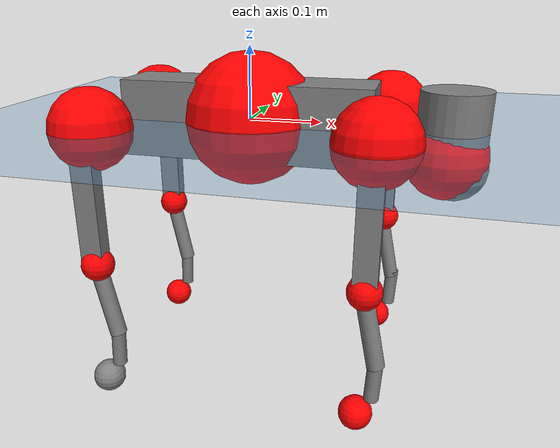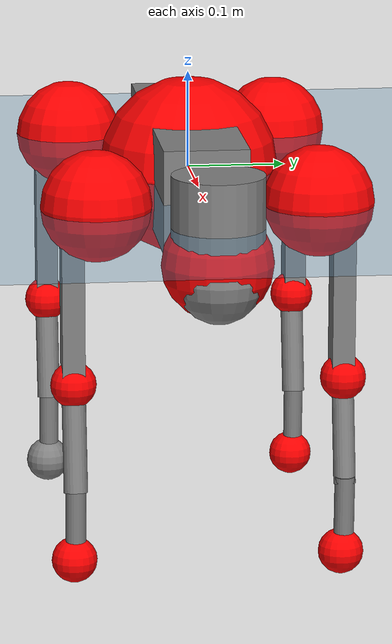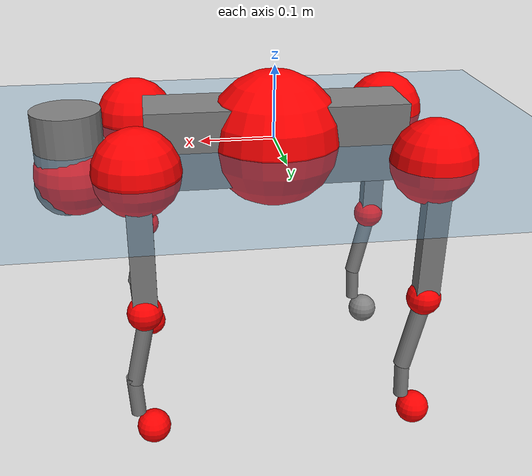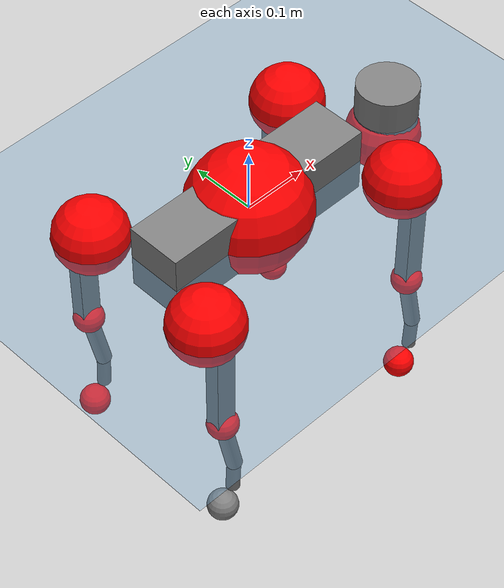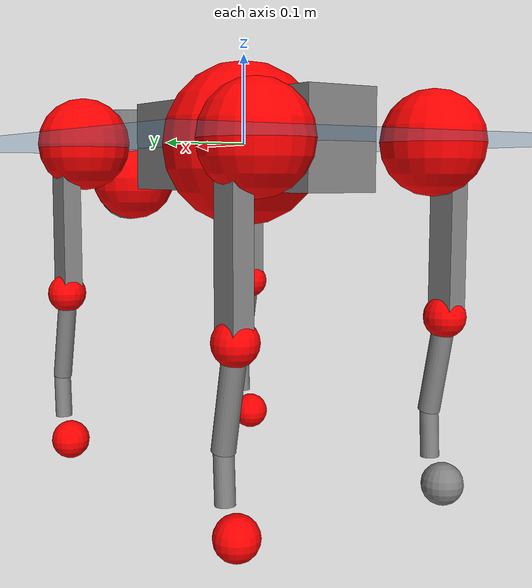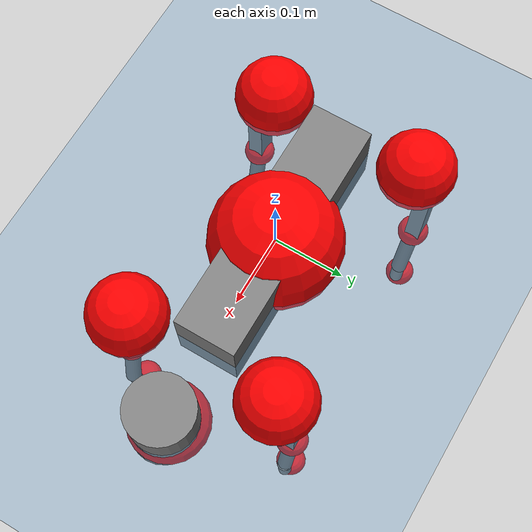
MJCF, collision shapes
<mujoco model="go2">
  <compiler angle="radian" assetdir="assets" balanceinertia="true" inertiafromgeom="false"/>

  <option timestep="0.005" density="1.2" viscosity="2e-05"/>

  <size nkey="1"/>

  <visual>
    <quality shadowsize="8192"/>
    <map shadowclip="0.5"/>
  </visual>

  <default>
    <default class="/">
      <geom contype="0" conaffinity="0" group="1" solref="-1000 -80"/>
      <site size="0.01 0.005 0.005" group="5"/>
      <general forcelimited="true" biastype="affine" gainprm="20" biasprm="0 -20 -0.5"/>
      <default class="go2">
        <joint armature="0.01" damping="0.01" frictionloss="0.2"/>
        <geom condim="1" margin="0.001"/>
        <default class="visual">
          <geom type="mesh" group="2"/>
        </default>
        <default class="collision">
          <geom group="3"/>
          <default class="foot">
            <geom size="0.022 0 0" condim="6" priority="1" friction="0.8 0.02 0.01" solimp="0.015 1 0.022"/>
          </default>
        </default>
        <default class="reward_collision_sphere">
          <geom group="5" rgba="1 0 0 1"/>
        </default>
      </default>
    </default>
  </default>

  <asset>
    <texture type="skybox" colorspace="auto" name="//unnamed_texture_0" builtin="gradient" rgb1="0.95 0.95 0.95" rgb2="0.95 0.95 0.95" width="100" height="600"/>
    <texture type="2d" colorspace="auto" name="texplane" builtin="checker" rgb1="0.345 0.575 0.748" rgb2="0.345 0.575 0.748" markrgb="1 1 1" width="512" height="512"/>
    <material name="MatPlane" class="/" texture="texplane" texuniform="true" texrepeat="2 2" specular="0.9"/>
    <material name="metal" class="/" rgba="0.9 0.95 0.95 1"/>
    <material name="black" class="/" rgba="0 0 0 1"/>
    <material name="white" class="/"/>
    <material name="gray" class="/" rgba="0.671705 0.692426 0.77427 1"/>
    <mesh name="base_0" class="/" file="base_0.obj"/>
    <mesh name="base_1" class="/" file="base_1.obj"/>
    <mesh name="base_2" class="/" file="base_2.obj"/>
    <mesh name="base_3" class="/" file="base_3.obj"/>
    <mesh name="base_4" class="/" file="base_4.obj"/>
    <mesh name="hip_0" class="/" file="hip_0.obj"/>
    <mesh name="hip_1" class="/" file="hip_1.obj"/>
    <mesh name="thigh_0" class="/" file="thigh_0.obj"/>
    <mesh name="thigh_1" class="/" file="thigh_1.obj"/>
    <mesh name="thigh_mirror_0" class="/" file="thigh_mirror_0.obj"/>
    <mesh name="thigh_mirror_1" class="/" file="thigh_mirror_1.obj"/>
    <mesh name="calf_0" class="/" file="calf_0.obj"/>
    <mesh name="calf_1" class="/" file="calf_1.obj"/>
    <mesh name="calf_mirror_0" class="/" file="calf_mirror_0.obj"/>
    <mesh name="calf_mirror_1" class="/" file="calf_mirror_1.obj"/>
    <mesh name="foot" class="/" file="foot.obj"/>
  </asset>

  <worldbody>
    <geom name="floor" class="/" size="100 100 0.125" type="plane" group="0" material="MatPlane"/>
    <light name="toplight_shadow" class="/" pos="0 0 5" dir="0.0990148 0.0990148 -0.990148" type="directional" ambient="0.04 0.04 0.04" diffuse="0.55 0.55 0.55" specular="0.12 0.12 0.12"/>
    <light name="toplight_fill" class="/" pos="0 0 5" dir="0.0990148 0.0990148 -0.990148" type="directional" castshadow="false" ambient="0.04 0.04 0.04" diffuse="0.3 0.3 0.3" specular="0.08 0.08 0.08"/>
    <body name="trunk" childclass="go2" pos="4.65187e-05 0.000510871 0.00091979" quat="1 -2.5655e-05 -2.61547e-05 0.000232692">
      <inertial pos="0.0210677 -0.000730056 -0.00450909" quat="-0.00233051 0.711839 -0.00174559 0.702337" mass="5.49824" diaginertia="0.0901511 0.0779755 0.0122075"/>
      <joint name="//unnamed_joint_0" type="free" armature="0" damping="0" frictionloss="0"/>
      <geom name="//unnamed_geom_1" class="visual" material="black" mesh="base_0"/>
      <geom name="//unnamed_geom_2" class="visual" material="black" mesh="base_1"/>
      <geom name="//unnamed_geom_3" class="visual" material="black" mesh="base_2"/>
      <geom name="//unnamed_geom_4" class="visual" material="white" mesh="base_3"/>
      <geom name="//unnamed_geom_5" class="visual" material="gray" mesh="base_4"/>
      <geom name="trunk_1" class="collision" size="0.174479 0.0433647 0.0528725" type="box"/>
      <geom name="trunk_2" class="collision" size="0.0463794 0.0417415" pos="0.274156 0 0.00866015" type="cylinder"/>
      <geom name="trunk_3" class="collision" size="0.0435966" pos="0.281851 0 -0.0519609"/>
      <geom name="//unnamed_geom_9" class="reward_collision_sphere" size="0.0927588"/>
      <geom name="//unnamed_geom_10" class="reward_collision_sphere" size="0.0556553" pos="0.269346 0 -0.0389707"/>
      <site name="imu" pos="-0.0285349 -0.00998928 0.0409471" size="0.00927588"/>
      <camera name="track" pos="0 -1.9096 0" quat="0.707107 0.707107 0 0" mode="trackcom"/>
      <camera name="ego_camera" pos="0.300128 0 0.0389707" quat="-0.5 -0.5 0.5 0.5"/>
      <body name="FL_hip" pos="0.185746 0.0439478 0.00237799" quat="1 -0.000792689 -0.000408637 0.000262324">
        <inertial pos="-0.00419973 0.00235347 0.000131577" quat="0.497094 0.499104 0.505639 0.498118" mass="0.550505" diaginertia="0.000740961 0.0004828 0.000235387"/>
        <joint name="FL_hip_joint" pos="0 0 0" axis="0.999991 0.00415355 -0.000655928" range="-1.02135 1.04565" armature="0.00937343" damping="0.00835019" frictionloss="0.181138"/>
        <geom name="//unnamed_geom_11" class="visual" material="metal" mesh="hip_0"/>
        <geom name="//unnamed_geom_12" class="visual" material="gray" mesh="hip_1"/>
        <geom name="//unnamed_geom_13" class="collision" size="0.042669 0.0185518" pos="0 0.076384 0" quat="0.707107 0.707107 0 0" type="cylinder"/>
        <geom name="//unnamed_geom_14" class="reward_collision_sphere" size="0.0556553" pos="0 0.066836 0"/>
        <body name="FL_thigh" pos="4.55219e-05 0.0913213 0.00217392" quat="1 3.0998e-05 5.9738e-05 7.95793e-05">
          <inertial pos="-0.00356562 -0.0225825 -0.0302122" quat="0.82886 0.0844486 -0.0222556 0.552598" mass="0.914405" diaginertia="0.00491863 0.00467747 0.000428903"/>
          <joint name="FL_thigh_joint" pos="0 0 0" axis="-0.000458781 0.999999 0.00118286" range="-1.5706 3.53057" armature="0.00962436" damping="0" frictionloss="0.185339"/>
          <geom name="//unnamed_geom_15" class="visual" material="metal" mesh="thigh_0"/>
          <geom name="//unnamed_geom_16" class="visual" material="gray" mesh="thigh_1"/>
          <geom name="//unnamed_geom_17" class="collision" size="0.0987881 0.011363 0.015769" pos="0 0 -0.0922306" quat="0.707107 0 0.707107 0" type="box"/>
          <body name="FL_calf" pos="0.00127966 0.00151119 -0.184579" quat="1 9.98359e-05 9.84923e-05 3.64949e-05">
            <inertial pos="0.00678081 0.000460771 -0.122076" quat="0.71082 0.00142178 -0.00432085 0.70336" mass="0.195198" diaginertia="0.00122024 0.001158 2.57617e-05"/>
            <joint name="FL_calf_joint" pos="0 0 0" axis="0.00354151 0.999993 -0.00152316" range="-2.73137 -0.856197" armature="0.00916291" damping="0.00396725" frictionloss="0.180633"/>
            <geom name="//unnamed_geom_18" class="visual" material="gray" mesh="calf_0"/>
            <geom name="//unnamed_geom_19" class="visual" material="black" mesh="calf_1"/>
            <geom name="FL_calf0" class="collision" size="0.0111311 0.0556553" pos="0.00769559 0 -0.0519609" quat="0.994493 0 -0.104807 0" type="cylinder"/>
            <geom name="//unnamed_geom_21" class="collision" size="0.0102035 0.0301466" pos="0.019239 0 -0.12817" quat="0.999688 0 0.0249974 0" type="cylinder"/>
            <geom name="//unnamed_geom_22" class="visual" pos="0 0 -0.184461" quat="1 0 0 0" material="black" mesh="foot"/>
            <geom name="FL_foot" class="foot" size="0.0169009" pos="-0.0019239 0 -0.184461"/>
            <geom name="//unnamed_geom_24" class="reward_collision_sphere" size="0.0231897"/>
            <geom name="//unnamed_geom_25" class="reward_collision_sphere" size="0.0231897" pos="-0.0019239 0 -0.184461"/>
            <site name="FL_foot" class="foot" pos="-0.0019239 0 -0.184461" size="0.00927588"/>
          </body>
        </body>
      </body>
      <body name="FR_hip" pos="0.185774 -0.0445459 0.00212859" quat="1 -7.92057e-06 -6.23372e-06 -2.64538e-07">
        <inertial pos="-0.00471654 -0.00148842 -0.000464704" quat="0.503329 0.500683 0.498436 0.497532" mass="0.55157" diaginertia="0.00075072 0.0004764 0.000239313"/>
        <joint name="FR_hip_joint" pos="0 0 0" axis="1 -0.000674845 0.000396435" stiffness="0.0059901" range="-1.04669 1.05177" armature="0.00922081" damping="0.0113577" frictionloss="0.178482"/>
        <geom name="//unnamed_geom_26" class="visual" pos="0 7.73461e-10 3.31753e-08" quat="4.63268e-05 1 0 0" material="metal" mesh="hip_0"/>
        <geom name="//unnamed_geom_27" class="visual" pos="0 1.25387e-09 -8.20553e-08" quat="4.63268e-05 1 0 0" material="gray" mesh="hip_1"/>
        <geom name="//unnamed_geom_28" class="collision" size="0.042669 0.0185518" pos="0 -0.076384 0" quat="0.707107 0.707107 0 0" type="cylinder"/>
        <geom name="//unnamed_geom_29" class="reward_collision_sphere" size="0.0556553" pos="0 -0.066836 0"/>
        <body name="FR_thigh" pos="-0.000569289 -0.0911328 0.000338631" quat="1 -0.000254604 -0.000189316 0.000104385">
          <inertial pos="-0.00380877 0.0213994 -0.0298166" quat="0.558234 -0.0171907 0.0784189 0.82579" mass="0.929707" diaginertia="0.00504923 0.00472837 0.000436664"/>
          <joint name="FR_thigh_joint" pos="0 0 0" axis="0.000898186 -0.999998 -0.00160908" range="-3.52215 1.57846" armature="0.00907029" damping="0.0141917" frictionloss="0.185226"/>
          <geom name="//unnamed_geom_30" class="visual" material="metal" mesh="thigh_mirror_0"/>
          <geom name="//unnamed_geom_31" class="visual" material="gray" mesh="thigh_mirror_1"/>
          <geom name="//unnamed_geom_32" class="collision" size="0.0987881 0.011363 0.015769" pos="0 0 -0.0922306" quat="0.707107 0 0.707107 0" type="box"/>
          <body name="FR_calf" pos="-0.000278113 0.000456977 -0.183485" quat="1 2.62343e-06 2.13215e-05 1.61295e-05">
            <inertial pos="0.00617512 0.000346281 -0.120615" quat="0.704532 -0.00138953 0.00386681 0.70966" mass="0.186847" diaginertia="0.00118094 0.00115878 2.48143e-05"/>
            <joint name="FR_calf_joint" pos="0 0 0" axis="0.00640243 -0.999978 0.0017091" range="0.832782 2.74071" armature="0.0093156" damping="0.00909211" frictionloss="0.184888"/>
            <geom name="//unnamed_geom_33" class="visual" material="gray" mesh="calf_mirror_0"/>
            <geom name="//unnamed_geom_34" class="visual" material="black" mesh="calf_mirror_1"/>
            <geom name="FR_calf0" class="collision" size="0.0120586 0.0556553" pos="0.00961949 0 -0.0519609" quat="0.995004 0 -0.0998334 0" type="cylinder"/>
            <geom name="//unnamed_geom_36" class="collision" size="0.0102035 0.0301466" pos="0.019239 0 -0.12817" quat="0.999688 0 0.0249974 0" type="cylinder"/>
            <geom name="//unnamed_geom_37" class="visual" pos="0 0 -0.184461" quat="1 0 0 0" material="black" mesh="foot"/>
            <geom name="FR_foot" class="foot" size="0.0222578" pos="-0.0019239 0 -0.184461"/>
            <geom name="//unnamed_geom_39" class="reward_collision_sphere" size="0.0231897"/>
            <geom name="//unnamed_geom_40" class="reward_collision_sphere" size="0.0231897" pos="-0.0019239 0 -0.184461"/>
            <site name="FR_foot" class="foot" pos="-0.0019239 0 -0.184461" size="0.00927588"/>
          </body>
        </body>
      </body>
      <body name="RL_hip" pos="-0.186042 0.0453349 -0.00168668" quat="1 5.62516e-05 0.000127495 0.000355111">
        <inertial pos="0.00518157 0.00177801 -0.00166197" quat="0.503423 0.499693 0.497845 0.499021" mass="0.546299" diaginertia="0.000731932 0.000471484 0.000233082"/>
        <joint name="RL_hip_joint" pos="0 0 0" axis="-0.999886 -0.00835234 -0.0125558" range="-1.01036 1.07026" armature="0.00920763" damping="0.00388902" frictionloss="0.196985"/>
        <geom name="//unnamed_geom_41" class="visual" pos="-8.35743e-10 0 -1.63825e-07" quat="4.63268e-05 0 1 0" material="metal" mesh="hip_0"/>
        <geom name="//unnamed_geom_42" class="visual" pos="-1.35484e-09 0 -1.45289e-07" quat="4.63268e-05 0 1 0" material="gray" mesh="hip_1"/>
        <geom name="//unnamed_geom_43" class="collision" size="0.042669 0.0185518" pos="0 0.076384 0" quat="0.707107 0.707107 0 0" type="cylinder"/>
        <geom name="//unnamed_geom_44" class="reward_collision_sphere" size="0.0556553" pos="0 0.066836 0"/>
        <body name="RL_thigh" pos="9.39765e-05 0.091067 -0.00159288" quat="1 -1.18671e-06 1.42023e-05 -1.08145e-05">
          <inertial pos="-0.00458607 -0.0204906 -0.0303693" quat="0.831388 0.0841181 -0.0151052 0.54908" mass="0.904639" diaginertia="0.00474809 0.00456016 0.000415877"/>
          <joint name="RL_thigh_joint" pos="0 0 0" axis="-0.00152248 0.999987 0.00491482" stiffness="0.00220826" range="-0.547961 4.54007" armature="0.00887156" damping="0.0100832" frictionloss="0.18706"/>
          <geom name="//unnamed_geom_45" class="visual" material="metal" mesh="thigh_0"/>
          <geom name="//unnamed_geom_46" class="visual" material="gray" mesh="thigh_1"/>
          <geom name="//unnamed_geom_47" class="collision" size="0.0987881 0.011363 0.015769" pos="0 0 -0.0922306" quat="0.707107 0 0.707107 0" type="box"/>
          <body name="RL_calf" pos="0.00081075 -0.00214177 -0.184991" quat="1 -2.47837e-05 0.00012447 0.00010788">
            <inertial pos="0.00524468 0.000196919 -0.122724" quat="0.710932 -0.000879842 -0.00529563 0.70324" mass="0.192769" diaginertia="0.00123007 0.00115059 2.62164e-05"/>
            <joint name="RL_calf_joint" pos="0 0 0" axis="0.0102714 0.999943 0.00282866" range="-2.73482 -0.836482" armature="0.00961137" damping="0" frictionloss="0.17938"/>
            <geom name="//unnamed_geom_48" class="visual" material="gray" mesh="calf_0"/>
            <geom name="//unnamed_geom_49" class="visual" material="black" mesh="calf_1"/>
            <geom name="RL_calf0" class="collision" size="0.0120586 0.0556553" pos="0.00961949 0 -0.0519609" quat="0.995004 0 -0.0998334 0" type="cylinder"/>
            <geom name="//unnamed_geom_51" class="collision" size="0.0102035 0.0301466" pos="0.019239 0 -0.12817" quat="0.999688 0 0.0249974 0" type="cylinder"/>
            <geom name="//unnamed_geom_52" class="visual" pos="0 0 -0.184461" quat="1 0 0 0" material="black" mesh="foot"/>
            <geom name="RL_foot" class="foot" size="0.0183245" pos="-0.0019239 0 -0.184461"/>
            <geom name="//unnamed_geom_54" class="reward_collision_sphere" size="0.0231897"/>
            <geom name="//unnamed_geom_55" class="reward_collision_sphere" size="0.0231897" pos="-0.0019239 0 -0.184461"/>
            <site name="RL_foot" class="foot" pos="-0.0019239 0 -0.184461" size="0.00927588"/>
          </body>
        </body>
      </body>
      <body name="RR_hip" pos="-0.186126 -0.0447531 -0.00175336" quat="1 0.000212389 0.000246231 0.000289211">
        <inertial pos="0.0048202 -0.00078393 -2.76756e-06" quat="0.499536 0.497 0.49819 0.505235" mass="0.522209" diaginertia="0.000708038 0.000460795 0.000228739"/>
        <joint name="RR_hip_joint" pos="0 0 0" axis="-0.999993 0.00377364 -0.000254173" range="-1.0658 1.03713" armature="0.00966273" damping="0.000732496" frictionloss="0.177675"/>
        <geom name="//unnamed_geom_56" class="visual" pos="8.35495e-10 7.73461e-10 -1.97e-07" quat="2.14617e-09 4.63268e-05 4.63268e-05 -1" material="metal" mesh="hip_0"/>
        <geom name="//unnamed_geom_57" class="visual" pos="1.35545e-09 1.25387e-09 -6.32339e-08" quat="2.14617e-09 4.63268e-05 4.63268e-05 -1" material="gray" mesh="hip_1"/>
        <geom name="//unnamed_geom_58" class="collision" size="0.042669 0.0185518" pos="0 -0.076384 0" quat="0.707107 0.707107 0 0" type="cylinder"/>
        <geom name="//unnamed_geom_59" class="reward_collision_sphere" size="0.0556553" pos="0 -0.066836 0"/>
        <body name="RR_thigh" pos="0.000350001 -0.0919254 0.000334339" quat="1 0.000134087 6.8671e-06 4.1471e-07">
          <inertial pos="-0.002929 0.0214243 -0.0283875" quat="0.551627 -0.019348 0.0849697 0.829526" mass="0.904841" diaginertia="0.00480054 0.00457215 0.000427586"/>
          <joint name="RR_thigh_joint" pos="0 0 0" axis="0.00971679 -0.999936 -0.00586367" range="-4.56852 0.548371" armature="0.00911431" damping="0.0109498" frictionloss="0.178968"/>
          <geom name="//unnamed_geom_60" class="visual" material="metal" mesh="thigh_mirror_0"/>
          <geom name="//unnamed_geom_61" class="visual" material="gray" mesh="thigh_mirror_1"/>
          <geom name="//unnamed_geom_62" class="collision" size="0.0987881 0.011363 0.015769" pos="0 0 -0.0922306" quat="0.707107 0 0.707107 0" type="box"/>
          <body name="RR_calf" pos="0.00251452 -0.000552302 -0.185131" quat="1 5.05831e-05 2.83537e-05 4.39783e-05">
            <inertial pos="0.00504842 0.000667329 -0.122509" quat="0.704153 -0.00240733 0.00082548 0.710044" mass="0.192869" diaginertia="0.00123071 0.00116059 2.6011e-05"/>
            <joint name="RR_calf_joint" pos="0 0 0" axis="-0.00475036 -0.999975 -0.0052404" range="0.841242 2.71199" armature="0.00969391" damping="0.00354212" frictionloss="0.188043"/>
            <geom name="//unnamed_geom_63" class="visual" material="gray" mesh="calf_mirror_0"/>
            <geom name="//unnamed_geom_64" class="visual" material="black" mesh="calf_mirror_1"/>
            <geom name="RR_calf0" class="collision" size="0.0120586 0.0556553" pos="0.00961949 0 -0.0519609" quat="0.995004 0 -0.0998334 0" type="cylinder"/>
            <geom name="//unnamed_geom_66" class="collision" size="0.0102035 0.0301466" pos="0.019239 0 -0.12817" quat="0.999688 0 0.0249974 0" type="cylinder"/>
            <geom name="//unnamed_geom_67" class="visual" pos="0 0 -0.184461" quat="1 0 0 0" material="black" mesh="foot"/>
            <geom name="RR_foot" class="foot" size="0.0232419" pos="-0.0019239 0 -0.184461"/>
            <geom name="//unnamed_geom_69" class="reward_collision_sphere" size="0.0231897"/>
            <geom name="//unnamed_geom_70" class="reward_collision_sphere" size="0.0231897" pos="-0.0019239 0 -0.184461"/>
            <site name="RR_foot" class="foot" pos="-0.0019239 0 -0.184461" size="0.00927588"/>
          </body>
        </body>
      </body>
    </body>
  </worldbody>

  <contact>
    <pair class="/" geom1="floor" geom2="FL_foot" name="//unnamed_contact_0"/>
    <pair class="/" geom1="floor" geom2="FR_foot" name="//unnamed_contact_1"/>
    <pair class="/" geom1="floor" geom2="RL_foot" name="//unnamed_contact_2"/>
    <pair class="/" geom1="floor" geom2="RR_foot" name="//unnamed_contact_3"/>
  </contact>

  <actuator>
    <general name="FL_hip" class="/" joint="FL_hip_joint" forcerange="-22.3613 22.3613" gainprm="18.9245" biasprm="0 -18.9245 -0.474058"/>
    <general name="FL_thigh" class="/" joint="FL_thigh_joint" forcerange="-22.7839 22.7839" gainprm="18.9245" biasprm="0 -18.9245 -0.474058"/>
    <general name="FL_calf" class="/" joint="FL_calf_joint" forcerange="-39.9691 39.9691" gainprm="18.9245" biasprm="0 -18.9245 -0.474058"/>
    <general name="FR_hip" class="/" joint="FR_hip_joint" forcerange="-22.2829 22.2829" gainprm="18.9245" biasprm="0 -18.9245 -0.474058"/>
    <general name="FR_thigh" class="/" joint="FR_thigh_joint" forcerange="-21.3891 21.3891" gainprm="18.9245" biasprm="0 -18.9245 -0.474058"/>
    <general name="FR_calf" class="/" joint="FR_calf_joint" forcerange="-45.2585 45.2585" gainprm="18.9245" biasprm="0 -18.9245 -0.474058"/>
    <general name="RL_hip" class="/" joint="RL_hip_joint" forcerange="-23.1668 23.1668" gainprm="18.9245" biasprm="0 -18.9245 -0.474058"/>
    <general name="RL_thigh" class="/" joint="RL_thigh_joint" forcerange="-21.2559 21.2559" gainprm="18.9245" biasprm="0 -18.9245 -0.474058"/>
    <general name="RL_calf" class="/" joint="RL_calf_joint" forcerange="-41.999 41.999" gainprm="18.9245" biasprm="0 -18.9245 -0.474058"/>
    <general name="RR_hip" class="/" joint="RR_hip_joint" forcerange="-22.1392 22.1392" gainprm="18.9245" biasprm="0 -18.9245 -0.474058"/>
    <general name="RR_thigh" class="/" joint="RR_thigh_joint" forcerange="-20.3945 20.3945" gainprm="18.9245" biasprm="0 -18.9245 -0.474058"/>
    <general name="RR_calf" class="/" joint="RR_calf_joint" forcerange="-41.443 41.443" gainprm="18.9245" biasprm="0 -18.9245 -0.474058"/>
  </actuator>

  <sensor>
    <gyro site="imu" name="imu_angular_velocity"/>
    <velocimeter site="imu" name="imu_linear_velocity"/>
    <framelinvel objtype="site" objname="FL_foot" name="FL_foot_global_linear_velocity"/>
    <framelinvel objtype="site" objname="FR_foot" name="FR_foot_global_linear_velocity"/>
    <framelinvel objtype="site" objname="RL_foot" name="RL_foot_global_linear_velocity"/>
    <framelinvel objtype="site" objname="RR_foot" name="RR_foot_global_linear_velocity"/>
  </sensor>

  <keyframe>
    <key name="home" qpos="0 0 0.325 1 0 0 0 0.1 0.8 -1.5 -0.1 -0.8 1.5 -0.1 0.8 -1.5 0.1 -0.8 1.5"/>
  </keyframe>
</mujoco>
